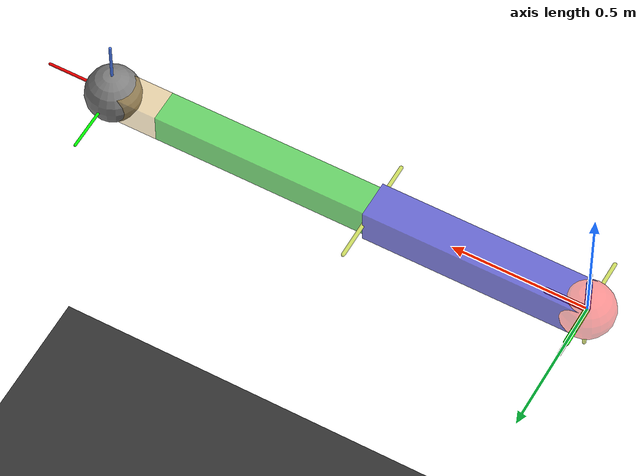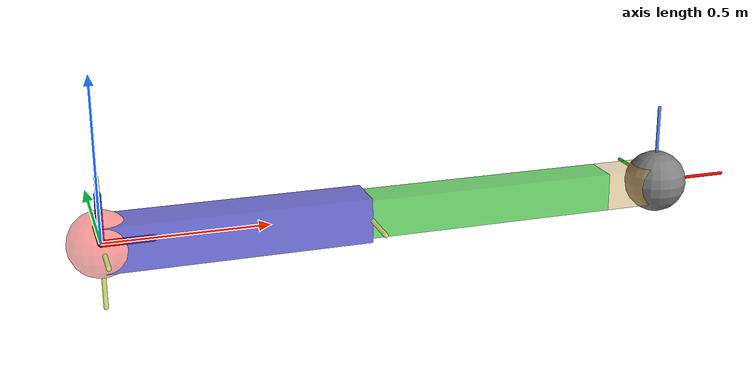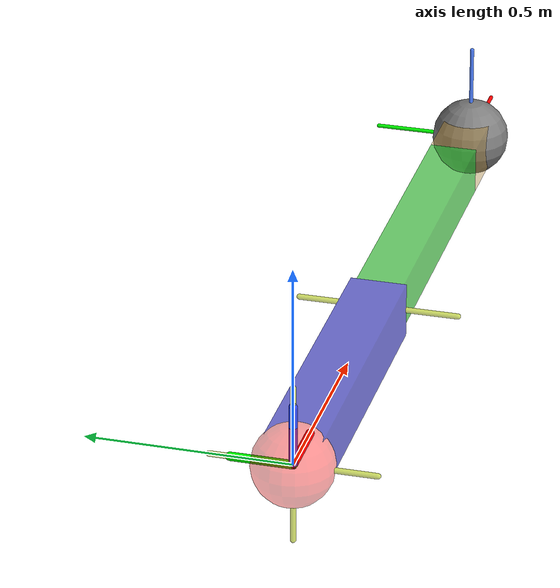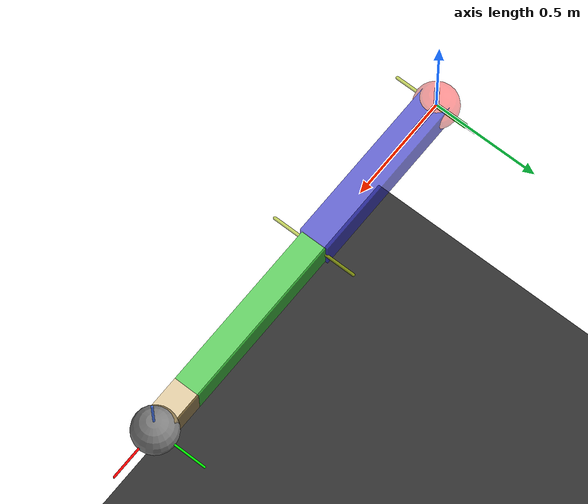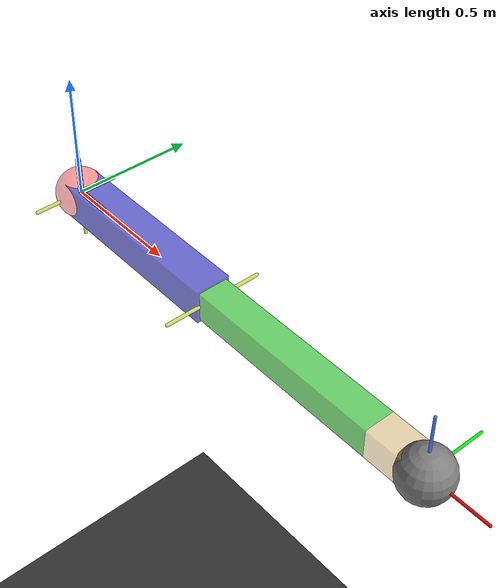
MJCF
<?xml version="1.0" ?>
<mujoco>
    <option gravity="0 0 -.1"/>
    <asset>
        <texture builtin="checker" height="100" name="texplane" rgb1="0 0 0" rgb2="0.8 0.8 0.8" type="2d" width="100"/>
        <material name="MatPlane" reflectance="0.5" shininess="1" specular="1" texrepeat="60 60" texture="texplane"/>
    </asset>
    <worldbody>
        <light cutoff="100" ambient="0.25 0.25 0.25" diffuse=".7 .7 .7" specular=".85 .85 .85" dir="-0 0 -1.3" directional="true" exponent="1" pos="0 0 0" castshadow="false"/>
        <geom conaffinity="1" condim="4" name="floor" pos="0 0 -3.0" rgba="0.2 0.2 0.2 1" size="40 40 40" type="plane" material="MatPlane" friction="1 0.01 0.001"/>
        <body name="cursor" pos="0 0 0">
            <geom type="sphere" size=".1" mass="0.1" contype="0" conaffinity="0" rgba="1 0 0 0.4"/>
            <geom type="capsule" fromto="0 0 0  .15 0 0" size="0.0105" contype="0" conaffinity="0" rgba="1 0 0 1"/>
            <geom type="capsule" fromto="0 0 0  0 .15 0" size="0.0105" contype="0" conaffinity="0" rgba="0 1 0 1"/>
            <geom type="capsule" fromto="0 0 0  0 0 .15" size="0.0105" contype="0" conaffinity="0" rgba=".2 .3 1 1"/>
            <joint name="cursor_x" type="slide" range="-5 5" axis="1 0 0"/>
            <joint name="cursor_y" type="slide" range="-5 5" axis="0 1 0"/>
            <joint name="cursor_z" type="slide" range="-5 5" axis="0 0 1"/>
            <joint name="cursor_p" type="hinge" axis="0 1 0"/>
        </body>

        <body pos="0 0 0">
            <joint name="j1" type="hinge" axis="0 0 1"/>
            <geom type="capsule" fromto="0 0 -.2 0 0 0.2" size="0.007" contype="0" conaffinity="0" rgba=".7 .8 0 0.6"/>
            <body pos="0 0 0">
                <geom type="box" size="0.07" fromto="0 0 0 .8 0 0" rgba="0.2 0.2 0.8 0.7"/>
                <joint name="j2" type="hinge" axis="0 -1 0"/>
                <geom type="capsule" fromto="0 -.2 0 0 0.2 0" size="0.007" contype="0" conaffinity="0" rgba=".7 .8 0 .6"/>
                <body pos=".8 0 0">
                    <geom type="box" size="0.06" fromto="0 0 0 .8 0 0" rgba="0.2 0.8 0.2 0.7"/>
                    <joint name="j3" type="hinge" axis="0 -1 0"/>
                    <geom type="capsule" fromto="0 -.2 0 0 0.2 0" size="0.007" contype="0" conaffinity="0" rgba=".7 .8 0 .6"/>
                    <body pos=".8 0 0">
                        <geom type="box" size="0.06" fromto="0 0 0 0.2 0 0" rgba="0.8 0.6 0.2 0.4"/>
                        <joint name="j4" type="hinge" axis="0 -1 0"/>
                        <body name="endpt" pos="0.2 0 0">
                            <geom type="sphere" size=".1" mass="0.0001"/>
                            <geom type="capsule" fromto="0 0 0  .25 0 0" size="0.005" contype="0" conaffinity="0" mass="0" rgba="1 0 0 1"/>
                            <geom type="capsule" fromto="0 0 0  0 .25 0" size="0.005" contype="0" conaffinity="0" mass="0" rgba="0 1 0 1"/>
                            <geom type="capsule" fromto="0 0 0  0 0 .25" size="0.005" contype="0" conaffinity="0" mass="0" rgba=".3 .5 1 1"/>
                        </body>
                    </body>
                </body>
            </body>
        </body>
    </worldbody>
    <actuator>
        <position name="j1" kp="500" kv="100" joint="j1"/>
        <position name="j2" kp="500" kv="100" joint="j2"/>
        <position name="j3" kp="500" kv="100" joint="j3"/>
        <position name="j4" kp="50" kv="10" joint="j4"/>
        <position name="cursor_x" inheritrange="0" kp="5" kv="2" joint="cursor_x"/>
        <position name="cursor_y" inheritrange="0" kp="5" kv="2" joint="cursor_y"/>
        <position name="cursor_z" inheritrange="0" kp="5" kv="2" joint="cursor_z"/>
        <position name="cursor_p" kp="3" kv="1" joint="cursor_p"/>
    </actuator>
</mujoco>
